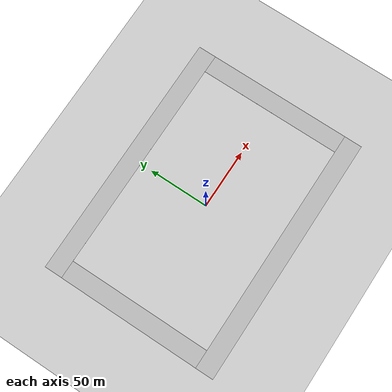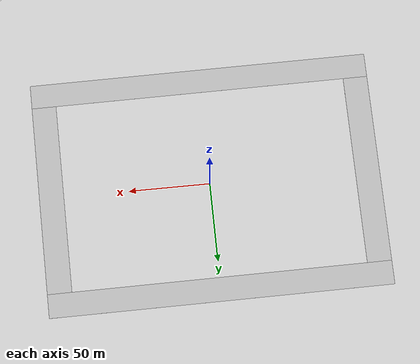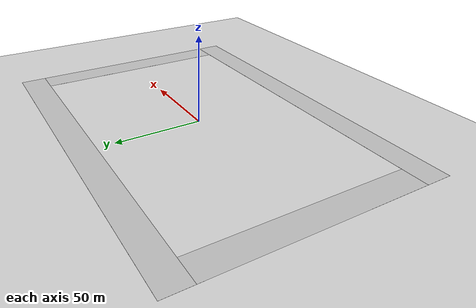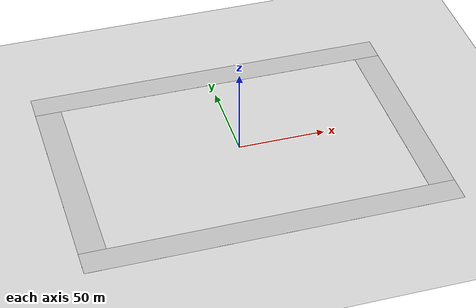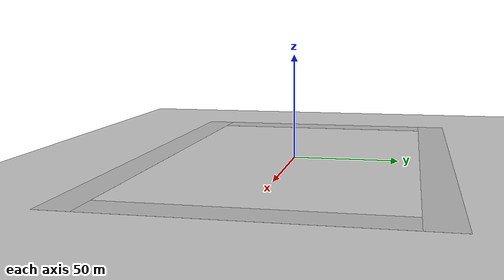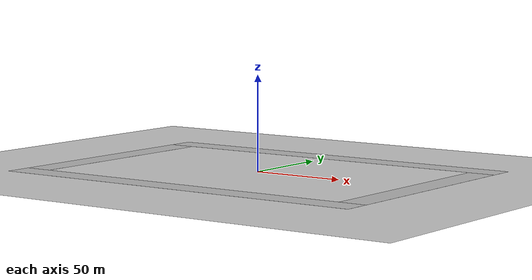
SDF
<?xml version="1.0" ?>
<sdf version="1.4">
  <model name="RoboCup15_MSL_Field">
    <static>true</static>

    <link name="field">
      <pose>0 0 0.1 0 0 0</pose>

      <collision name="collision">
        <geometry>
          <plane>
            <normal>0 0 1</normal>
            <size>180 120</size>
          </plane>
        </geometry>
        <surface>
          <friction>
            <ode>
              <mu>100</mu>
              <mu2>50</mu2>
            </ode>
          </friction>
        </surface>
      </collision>

      <visual name="carpet">
        <cast_shadows>false</cast_shadows>
        <geometry>
          <plane>
            <normal>0 0 1</normal>
            <size>180 120</size>
          </plane>
        </geometry>
        <material>
          <script>
            <uri>model://MSL_models15/RoboCup15_MSL_Field/materials/scripts/</uri>
            <uri>model://MSL_models15/RoboCup15_MSL_Field/materials/textures/</uri>
            <name>RoboCup/Carpet</name>
          </script>
        </material>
      </visual>

      <visual name="base1">
        <pose>0 67.5 0.1 0 0 0</pose>
        <cast_shadows>false</cast_shadows>
        <geometry>
          <plane>
            <normal>0 0 1</normal>
            <size>210 15</size>
          </plane>
        </geometry>
        <material>
          <script>
            <uri>model://MSL_models15/RoboCup15_MSL_Field/materials/scripts/</uri>
            <uri>model://MSL_models15/RoboCup15_MSL_Field/materials/textures/</uri>
            <name>RoboCup/FieldBorder</name>
          </script>
        </material>
      </visual>

      <visual name="base2">
        <pose>0 -67.5 0.1 0 0 0</pose>
        <cast_shadows>false</cast_shadows>
        <geometry>
          <plane>
            <normal>0 0 1</normal>
            <size>210 15</size>
          </plane>
        </geometry>
        <material>
          <script>
            <uri>model://MSL_models15/RoboCup15_MSL_Field/materials/scripts/</uri>
            <uri>model://MSL_models15/RoboCup15_MSL_Field/materials/textures/</uri>
            <name>RoboCup/FieldBorder</name>
          </script>
        </material>
      </visual>

      <visual name="base3">
        <pose>97.5 0 0.1 0 0 0</pose>
        <cast_shadows>false</cast_shadows>
        <geometry>
          <plane>
            <normal>0 0 1</normal>
            <size>15 120</size>
          </plane>
        </geometry>
        <material>
          <script>
            <uri>model://MSL_models15/RoboCup15_MSL_Field/materials/scripts/</uri>
            <uri>model://MSL_models15/RoboCup15_MSL_Field/materials/textures/</uri>
            <name>RoboCup/FieldBorder</name>
          </script>
        </material>
      </visual>

      <visual name="base4">
        <pose>-97.5 0 0.1 0 0 0</pose>
        <cast_shadows>false</cast_shadows>
        <geometry>
          <plane>
            <normal>0 0 1</normal>
            <size>15 120</size>
          </plane>
        </geometry>
        <material>
          <script>
            <uri>model://MSL_models15/RoboCup15_MSL_Field/materials/scripts/</uri>
            <uri>model://MSL_models15/RoboCup15_MSL_Field/materials/textures/</uri>
            <name>RoboCup/FieldBorder</name>
          </script>
        </material>
      </visual>

    </link>
  </model>
</sdf>
